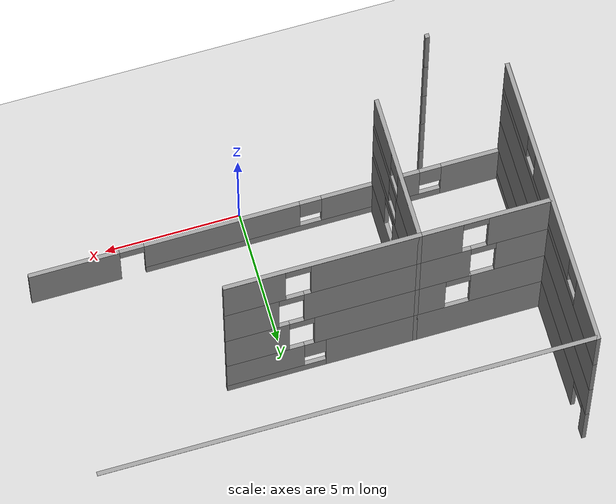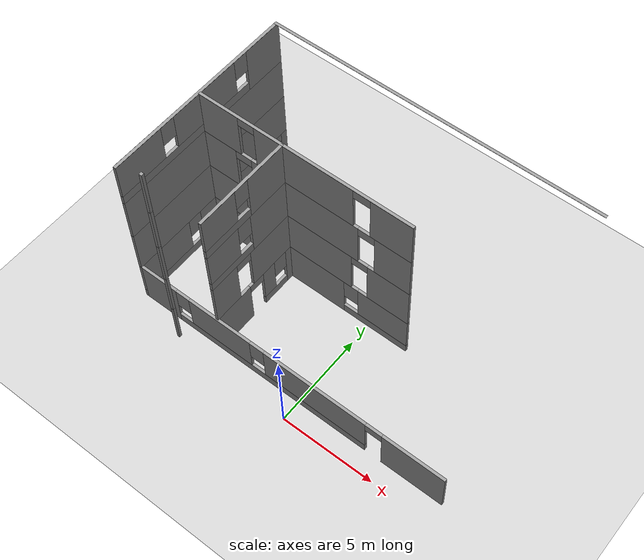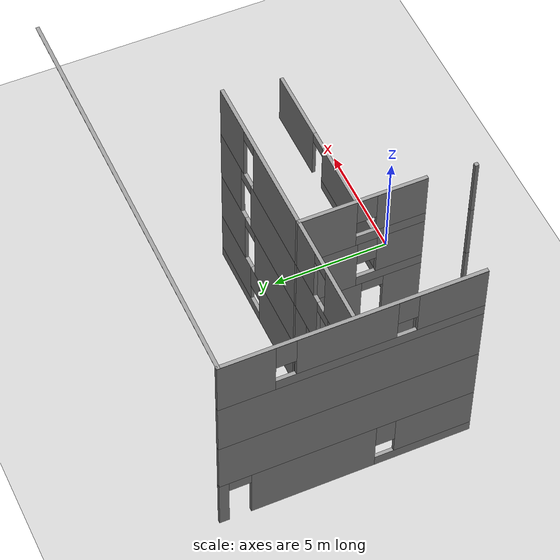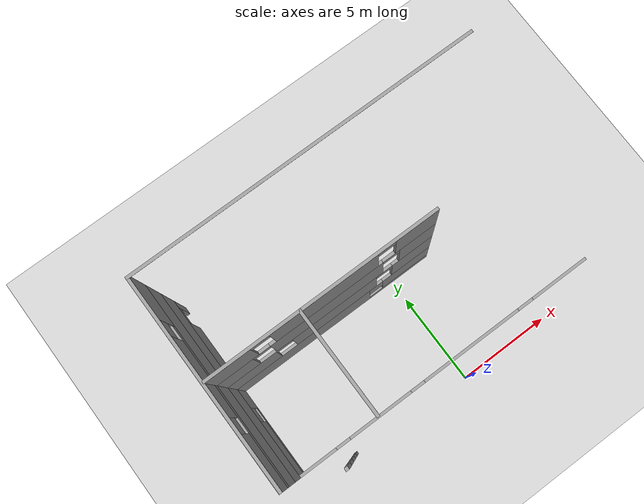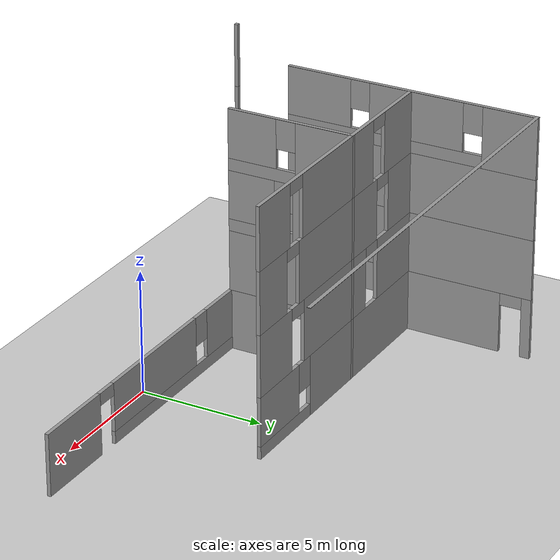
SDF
<sdf version="1.7">
 <world name="default">
  <model name="ground_plane">
   <static>1</static>
   <link name="link">
    <collision name="collision">
     <geometry><plane><normal>0 0 1</normal><size>100 100</size></plane></geometry>
     <surface>
      <contact><collide_bitmask>65535</collide_bitmask></contact>
      <friction><ode><mu>100</mu><mu2>50</mu2></ode></friction>
     </surface>
    </collision>
    <visual name="visual">
     <cast_shadows>0</cast_shadows>
     <geometry><plane><normal>0 0 1</normal><size>100 100</size></plane></geometry>
     <material>
      <script><uri>file://media/materials/scripts/gazebo.material</uri><name>Gazebo/Grey</name></script>
     </material>
    </visual>
   </link>
  </model>
  <model name="saglam_yeni_bina1">
   <pose>-0.684997 5.87917 0 0 -0 0</pose>
   <link name="Floor_0">
    <pose>-5.97811 -5.5661 0 0 -0 0</pose>
    <visual name="Floor_0_Visual_0">
     <pose>0 0 0.05 0 -0 0</pose>
     <geometry><box><size>0 0 0.1</size></box></geometry>
     <material>
      <script><uri>file://media/materials/scripts/gazebo.material</uri><name>Gazebo/CeilingTiled</name></script>
      <ambient>0.435294 0.796078 0.67451 1</ambient>
     </material>
     <meta><layer>0</layer></meta>
    </visual>
    <collision name="Floor_0_Collision_0">
     <geometry><box><size>0 0 0.1</size></box></geometry>
     <pose>0 0 0.05 0 -0 0</pose>
    </collision>
   </link>
   <link name="Wall_3">
    <collision name="Wall_3_Collision">
     <geometry><box><size>0.15 0.15 2.5</size></box></geometry>
     <pose>0 0 1.25 0 -0 0</pose>
    </collision>
    <visual name="Wall_3_Visual">
     <pose>0 0 1.25 0 -0 0</pose>
     <geometry><box><size>0.15 0.15 2.5</size></box></geometry>
     <material>
      <script><uri>file://media/materials/scripts/gazebo.material</uri><name>Gazebo/Grey</name></script>
      <ambient>1 1 1 1</ambient>
     </material>
     <meta><layer>0</layer></meta>
    </visual>
    <pose>-5.97811 -5.5661 0 0 -0 0</pose>
   </link>
   <link name="Wall_32">
    <pose>-0.022952 -4.7839 0 0 -0 0</pose>
    <visual name="Wall_32_Visual_0">
     <pose>-7.60802 0 1.25 0 -0 0</pose>
     <geometry><box><size>2.28397 0.15 2.5</size></box></geometry>
     <material>
      <script><uri>file://media/materials/scripts/gazebo.material</uri><name>Gazebo/Grey</name></script>
      <ambient>1 1 1 1</ambient>
     </material>
     <meta><layer>0</layer></meta>
    </visual>
    <collision name="Wall_32_Collision_0">
     <geometry><box><size>2.28397 0.15 2.5</size></box></geometry>
     <pose>-7.60802 0 1.25 0 -0 0</pose>
    </collision>
    <visual name="Wall_32_Visual_1">
     <pose>7.08181 0 1.25 0 -0 0</pose>
     <geometry><box><size>3.33638 0.15 2.5</size></box></geometry>
     <material>
      <script><uri>file://media/materials/scripts/gazebo.material</uri><name>Gazebo/Grey</name></script>
      <ambient>1 1 1 1</ambient>
     </material>
     <meta><layer>0</layer></meta>
    </visual>
    <collision name="Wall_32_Collision_1">
     <geometry><box><size>3.33638 0.15 2.5</size></box></geometry>
     <pose>7.08181 0 1.25 0 -0 0</pose>
    </collision>
    <visual name="Wall_32_Visual_2">
     <pose>-0.976209 0 0.25 0 -0 0</pose>
     <geometry><box><size>10.9796 0.15 0.5</size></box></geometry>
     <material>
      <script><uri>file://media/materials/scripts/gazebo.material</uri><name>Gazebo/Grey</name></script>
      <ambient>1 1 1 1</ambient>
     </material>
     <meta><layer>0</layer></meta>
    </visual>
    <collision name="Wall_32_Collision_2">
     <geometry><box><size>10.9796 0.15 0.5</size></box></geometry>
     <pose>-0.976209 0 0.25 0 -0 0</pose>
    </collision>
    <visual name="Wall_32_Visual_3">
     <pose>-3.84423 0 1.5 0 -0 0</pose>
     <geometry><box><size>3.6436 0.15 2</size></box></geometry>
     <material>
      <script><uri>file://media/materials/scripts/gazebo.material</uri><name>Gazebo/Grey</name></script>
      <ambient>1 1 1 1</ambient>
     </material>
     <meta><layer>0</layer></meta>
    </visual>
    <collision name="Wall_32_Collision_3">
     <geometry><box><size>3.6436 0.15 2</size></box></geometry>
     <pose>-3.84423 0 1.5 0 -0 0</pose>
    </collision>
    <visual name="Wall_32_Visual_4">
     <pose>1.64559 0 1.5 0 -0 0</pose>
     <geometry><box><size>5.73605 0.15 2</size></box></geometry>
     <material>
      <script><uri>file://media/materials/scripts/gazebo.material</uri><name>Gazebo/Grey</name></script>
      <ambient>1 1 1 1</ambient>
     </material>
     <meta><layer>0</layer></meta>
    </visual>
    <collision name="Wall_32_Collision_4">
     <geometry><box><size>5.73605 0.15 2</size></box></geometry>
     <pose>1.64559 0 1.5 0 -0 0</pose>
    </collision>
    <visual name="Wall_32_Visual_5">
     <pose>-6.06603 0 1.9 0 -0 0</pose>
     <geometry><box><size>0.8 0.15 1.2</size></box></geometry>
     <material>
      <script><uri>file://media/materials/scripts/gazebo.material</uri><name>Gazebo/Grey</name></script>
      <ambient>1 1 1 1</ambient>
     </material>
     <meta><layer>0</layer></meta>
    </visual>
    <collision name="Wall_32_Collision_5">
     <geometry><box><size>0.8 0.15 1.2</size></box></geometry>
     <pose>-6.06603 0 1.9 0 -0 0</pose>
    </collision>
    <visual name="Wall_32_Visual_6">
     <pose>-1.62243 0 1.9 0 -0 0</pose>
     <geometry><box><size>0.8 0.15 1.2</size></box></geometry>
     <material>
      <script><uri>file://media/materials/scripts/gazebo.material</uri><name>Gazebo/Grey</name></script>
      <ambient>1 1 1 1</ambient>
     </material>
     <meta><layer>0</layer></meta>
    </visual>
    <collision name="Wall_32_Collision_6">
     <geometry><box><size>0.8 0.15 1.2</size></box></geometry>
     <pose>-1.62243 0 1.9 0 -0 0</pose>
    </collision>
    <visual name="Wall_32_Visual_7">
     <pose>4.96362 0 2.25 0 -0 0</pose>
     <geometry><box><size>0.9 0.15 0.5</size></box></geometry>
     <material>
      <script><uri>file://media/materials/scripts/gazebo.material</uri><name>Gazebo/Grey</name></script>
      <ambient>1 1 1 1</ambient>
     </material>
     <meta><layer>0</layer></meta>
    </visual>
    <collision name="Wall_32_Collision_7">
     <geometry><box><size>0.9 0.15 0.5</size></box></geometry>
     <pose>4.96362 0 2.25 0 -0 0</pose>
    </collision>
   </link>
   <link name="Wall_35">
    <pose>-8.69795 0.3911 0 0 -0 -1.5708</pose>
    <visual name="Wall_35_Visual_0">
     <pose>-5.04796 0 1.25 0 -0 0</pose>
     <geometry><box><size>0.404073 0.15 2.5</size></box></geometry>
     <material>
      <script><uri>file://media/materials/scripts/gazebo.material</uri><name>Gazebo/Grey</name></script>
      <ambient>1 1 1 1</ambient>
     </material>
     <meta><layer>0</layer></meta>
    </visual>
    <collision name="Wall_35_Collision_0">
     <geometry><box><size>0.404073 0.15 2.5</size></box></geometry>
     <pose>-5.04796 0 1.25 0 -0 0</pose>
    </collision>
    <visual name="Wall_35_Visual_1">
     <pose>-1.38208 0 1.25 0 -0 0</pose>
     <geometry><box><size>5.1277 0.15 2.5</size></box></geometry>
     <material>
      <script><uri>file://media/materials/scripts/gazebo.material</uri><name>Gazebo/Grey</name></script>
      <ambient>1 1 1 1</ambient>
     </material>
     <meta><layer>0</layer></meta>
    </visual>
    <collision name="Wall_35_Collision_1">
     <geometry><box><size>5.1277 0.15 2.5</size></box></geometry>
     <pose>-1.38208 0 1.25 0 -0 0</pose>
    </collision>
    <visual name="Wall_35_Visual_2">
     <pose>3.21589 0 0.25 0 -0 0</pose>
     <geometry><box><size>4.06823 0.15 0.5</size></box></geometry>
     <material>
      <script><uri>file://media/materials/scripts/gazebo.material</uri><name>Gazebo/Grey</name></script>
      <ambient>1 1 1 1</ambient>
     </material>
     <meta><layer>0</layer></meta>
    </visual>
    <collision name="Wall_35_Collision_2">
     <geometry><box><size>4.06823 0.15 0.5</size></box></geometry>
     <pose>3.21589 0 0.25 0 -0 0</pose>
    </collision>
    <visual name="Wall_35_Visual_3">
     <pose>3.61589 0 1.5 0 -0 0</pose>
     <geometry><box><size>3.26823 0.15 2</size></box></geometry>
     <material>
      <script><uri>file://media/materials/scripts/gazebo.material</uri><name>Gazebo/Grey</name></script>
      <ambient>1 1 1 1</ambient>
     </material>
     <meta><layer>0</layer></meta>
    </visual>
    <collision name="Wall_35_Collision_3">
     <geometry><box><size>3.26823 0.15 2</size></box></geometry>
     <pose>3.61589 0 1.5 0 -0 0</pose>
    </collision>
    <visual name="Wall_35_Visual_4">
     <pose>1.58177 0 1.9 0 -0 0</pose>
     <geometry><box><size>0.8 0.15 1.2</size></box></geometry>
     <material>
      <script><uri>file://media/materials/scripts/gazebo.material</uri><name>Gazebo/Grey</name></script>
      <ambient>1 1 1 1</ambient>
     </material>
     <meta><layer>0</layer></meta>
    </visual>
    <collision name="Wall_35_Collision_4">
     <geometry><box><size>0.8 0.15 1.2</size></box></geometry>
     <pose>1.58177 0 1.9 0 -0 0</pose>
    </collision>
    <visual name="Wall_35_Visual_5">
     <pose>-4.39593 0 2.25 0 -0 0</pose>
     <geometry><box><size>0.9 0.15 0.5</size></box></geometry>
     <material>
      <script><uri>file://media/materials/scripts/gazebo.material</uri><name>Gazebo/Grey</name></script>
      <ambient>1 1 1 1</ambient>
     </material>
     <meta><layer>0</layer></meta>
    </visual>
    <collision name="Wall_35_Collision_5">
     <geometry><box><size>0.9 0.15 0.5</size></box></geometry>
     <pose>-4.39593 0 2.25 0 -0 0</pose>
    </collision>
   </link>
   <link name="Wall_39">
    <collision name="Wall_39_Collision">
     <geometry><box><size>4.75 0.15 2.5</size></box></geometry>
     <pose>0 0 1.25 0 -0 0</pose>
    </collision>
    <visual name="Wall_39_Visual">
     <pose>0 0 1.25 0 -0 0</pose>
     <geometry><box><size>4.75 0.15 2.5</size></box></geometry>
     <material>
      <script><uri>file://media/materials/scripts/gazebo.material</uri><name>Gazebo/Grey</name></script>
      <ambient>1 1 1 1</ambient>
     </material>
     <meta><layer>0</layer></meta>
    </visual>
    <pose>-6.30174 0.369877 0 0 -0 0</pose>
   </link>
   <link name="Wall_40">
    <pose>-4.00174 -2.18012 0 0 -0 -1.5708</pose>
    <visual name="Wall_40_Visual_0">
     <pose>-2.3643 0 1.25 0 -0 0</pose>
     <geometry><box><size>0.5214 0.15 2.5</size></box></geometry>
     <material>
      <script><uri>file://media/materials/scripts/gazebo.material</uri><name>Gazebo/Grey</name></script>
      <ambient>1 1 1 1</ambient>
     </material>
     <meta><layer>0</layer></meta>
    </visual>
    <collision name="Wall_40_Collision_0">
     <geometry><box><size>0.5214 0.15 2.5</size></box></geometry>
     <pose>-2.3643 0 1.25 0 -0 0</pose>
    </collision>
    <visual name="Wall_40_Visual_1">
     <pose>1.50565 0 1.25 0 -0 0</pose>
     <geometry><box><size>2.2387 0.15 2.5</size></box></geometry>
     <material>
      <script><uri>file://media/materials/scripts/gazebo.material</uri><name>Gazebo/Grey</name></script>
      <ambient>1 1 1 1</ambient>
     </material>
     <meta><layer>0</layer></meta>
    </visual>
    <collision name="Wall_40_Collision_1">
     <geometry><box><size>2.2387 0.15 2.5</size></box></geometry>
     <pose>1.50565 0 1.25 0 -0 0</pose>
    </collision>
    <visual name="Wall_40_Visual_2">
     <pose>-1.30865 0 0.25 0 -0 0</pose>
     <geometry><box><size>1.5899 0.15 0.5</size></box></geometry>
     <material>
      <script><uri>file://media/materials/scripts/gazebo.material</uri><name>Gazebo/Grey</name></script>
      <ambient>1 1 1 1</ambient>
     </material>
     <meta><layer>0</layer></meta>
    </visual>
    <collision name="Wall_40_Collision_2">
     <geometry><box><size>1.5899 0.15 0.5</size></box></geometry>
     <pose>-1.30865 0 0.25 0 -0 0</pose>
    </collision>
    <visual name="Wall_40_Visual_3">
     <pose>-0.90865 0 1.5 0 -0 0</pose>
     <geometry><box><size>0.7899 0.15 2</size></box></geometry>
     <material>
      <script><uri>file://media/materials/scripts/gazebo.material</uri><name>Gazebo/Grey</name></script>
      <ambient>1 1 1 1</ambient>
     </material>
     <meta><layer>0</layer></meta>
    </visual>
    <collision name="Wall_40_Collision_3">
     <geometry><box><size>0.7899 0.15 2</size></box></geometry>
     <pose>-0.90865 0 1.5 0 -0 0</pose>
    </collision>
    <visual name="Wall_40_Visual_4">
     <pose>-1.7036 0 1.9 0 -0 0</pose>
     <geometry><box><size>0.8 0.15 1.2</size></box></geometry>
     <material>
      <script><uri>file://media/materials/scripts/gazebo.material</uri><name>Gazebo/Grey</name></script>
      <ambient>1 1 1 1</ambient>
     </material>
     <meta><layer>0</layer></meta>
    </visual>
    <collision name="Wall_40_Collision_4">
     <geometry><box><size>0.8 0.15 1.2</size></box></geometry>
     <pose>-1.7036 0 1.9 0 -0 0</pose>
    </collision>
    <visual name="Wall_40_Visual_5">
     <pose>-0.0637 0 2.25 0 -0 0</pose>
     <geometry><box><size>0.9 0.15 0.5</size></box></geometry>
     <material>
      <script><uri>file://media/materials/scripts/gazebo.material</uri><name>Gazebo/Grey</name></script>
      <ambient>1 1 1 1</ambient>
     </material>
     <meta><layer>0</layer></meta>
    </visual>
    <collision name="Wall_40_Collision_5">
     <geometry><box><size>0.9 0.15 0.5</size></box></geometry>
     <pose>-0.0637 0 2.25 0 -0 0</pose>
    </collision>
   </link>
   <link name="Wall_42">
    <pose>-0.576736 0.369877 0 0 -0 0</pose>
    <visual name="Wall_42_Visual_0">
     <pose>-1.82308 0 1.25 0 -0 0</pose>
     <geometry><box><size>3.35385 0.15 2.5</size></box></geometry>
     <material>
      <script><uri>file://media/materials/scripts/gazebo.material</uri><name>Gazebo/Grey</name></script>
      <ambient>1 1 1 1</ambient>
     </material>
     <meta><layer>0</layer></meta>
    </visual>
    <collision name="Wall_42_Collision_0">
     <geometry><box><size>3.35385 0.15 2.5</size></box></geometry>
     <pose>-1.82308 0 1.25 0 -0 0</pose>
    </collision>
    <visual name="Wall_42_Visual_1">
     <pose>1.67692 0 0.25 0 -0 0</pose>
     <geometry><box><size>3.64615 0.15 0.5</size></box></geometry>
     <material>
      <script><uri>file://media/materials/scripts/gazebo.material</uri><name>Gazebo/Grey</name></script>
      <ambient>1 1 1 1</ambient>
     </material>
     <meta><layer>0</layer></meta>
    </visual>
    <collision name="Wall_42_Collision_1">
     <geometry><box><size>3.64615 0.15 0.5</size></box></geometry>
     <pose>1.67692 0 0.25 0 -0 0</pose>
    </collision>
    <visual name="Wall_42_Visual_2">
     <pose>2.07693 0 1.5 0 -0 0</pose>
     <geometry><box><size>2.84615 0.15 2</size></box></geometry>
     <material>
      <script><uri>file://media/materials/scripts/gazebo.material</uri><name>Gazebo/Grey</name></script>
      <ambient>1 1 1 1</ambient>
     </material>
     <meta><layer>0</layer></meta>
    </visual>
    <collision name="Wall_42_Collision_2">
     <geometry><box><size>2.84615 0.15 2</size></box></geometry>
     <pose>2.07693 0 1.5 0 -0 0</pose>
    </collision>
    <visual name="Wall_42_Visual_3">
     <pose>0.25385 0 1.9 0 -0 0</pose>
     <geometry><box><size>0.8 0.15 1.2</size></box></geometry>
     <material>
      <script><uri>file://media/materials/scripts/gazebo.material</uri><name>Gazebo/Grey</name></script>
      <ambient>1 1 1 1</ambient>
     </material>
     <meta><layer>0</layer></meta>
    </visual>
    <collision name="Wall_42_Collision_3">
     <geometry><box><size>0.8 0.15 1.2</size></box></geometry>
     <pose>0.25385 0 1.9 0 -0 0</pose>
    </collision>
   </link>
   <link name="Wall_48">
    <collision name="Wall_48_Collision">
     <geometry><box><size>0.15 0.15 2.5</size></box></geometry>
     <pose>0 0 1.25 0 -0 0</pose>
    </collision>
    <visual name="Wall_48_Visual">
     <pose>0 0 1.25 0 -0 0</pose>
     <geometry><box><size>0.15 0.15 2.5</size></box></geometry>
     <material>
      <script><uri>file://media/materials/scripts/gazebo.material</uri><name>Gazebo/Grey</name></script>
      <ambient>1 1 1 1</ambient>
     </material>
     <meta><layer>1</layer></meta>
    </visual>
    <pose>-5.97811 -5.5661 2.5 0 -0 0</pose>
   </link>
   <link name="Wall_52">
    <collision name="Wall_52_Collision">
     <geometry><box><size>10.5 0.15 2.5</size></box></geometry>
     <pose>0 0 1.25 0 -0 0</pose>
    </collision>
    <visual name="Wall_52_Visual">
     <pose>0 0 1.25 0 -0 0</pose>
     <geometry><box><size>10.5 0.15 2.5</size></box></geometry>
     <material>
      <script><uri>file://media/materials/scripts/gazebo.material</uri><name>Gazebo/Grey</name></script>
      <ambient>1 1 1 1</ambient>
     </material>
     <meta><layer>1</layer></meta>
    </visual>
    <pose>-8.69795 0.3911 2.5 0 -0 -1.5708</pose>
   </link>
   <link name="Wall_53">
    <pose>-6.30174 0.369877 2.5 0 -0 0</pose>
    <visual name="Wall_53_Visual_0">
     <pose>-1.01228 0 1.25 0 -0 0</pose>
     <geometry><box><size>2.72543 0.15 2.5</size></box></geometry>
     <material>
      <script><uri>file://media/materials/scripts/gazebo.material</uri><name>Gazebo/Grey</name></script>
      <ambient>1 1 1 1</ambient>
     </material>
     <meta><layer>1</layer></meta>
    </visual>
    <collision name="Wall_53_Collision_0">
     <geometry><box><size>2.72543 0.15 2.5</size></box></geometry>
     <pose>-1.01228 0 1.25 0 -0 0</pose>
    </collision>
    <visual name="Wall_53_Visual_1">
     <pose>1.81272 0 1.25 0 -0 0</pose>
     <geometry><box><size>1.12457 0.15 2.5</size></box></geometry>
     <material>
      <script><uri>file://media/materials/scripts/gazebo.material</uri><name>Gazebo/Grey</name></script>
      <ambient>1 1 1 1</ambient>
     </material>
     <meta><layer>1</layer></meta>
    </visual>
    <collision name="Wall_53_Collision_1">
     <geometry><box><size>1.12457 0.15 2.5</size></box></geometry>
     <pose>1.81272 0 1.25 0 -0 0</pose>
    </collision>
    <visual name="Wall_53_Visual_2">
     <pose>0.800433 0 2.25 0 -0 0</pose>
     <geometry><box><size>0.9 0.15 0.5</size></box></geometry>
     <material>
      <script><uri>file://media/materials/scripts/gazebo.material</uri><name>Gazebo/Grey</name></script>
      <ambient>1 1 1 1</ambient>
     </material>
     <meta><layer>1</layer></meta>
    </visual>
    <collision name="Wall_53_Collision_2">
     <geometry><box><size>0.9 0.15 0.5</size></box></geometry>
     <pose>0.800433 0 2.25 0 -0 0</pose>
    </collision>
   </link>
   <link name="Wall_54">
    <pose>-4.00174 -2.18012 2.5 0 -0 -1.5708</pose>
    <visual name="Wall_54_Visual_0">
     <pose>-1.24914 0 1.25 0 -0 0</pose>
     <geometry><box><size>2.75172 0.15 2.5</size></box></geometry>
     <material>
      <script><uri>file://media/materials/scripts/gazebo.material</uri><name>Gazebo/Grey</name></script>
      <ambient>1 1 1 1</ambient>
     </material>
     <meta><layer>1</layer></meta>
    </visual>
    <collision name="Wall_54_Collision_0">
     <geometry><box><size>2.75172 0.15 2.5</size></box></geometry>
     <pose>-1.24914 0 1.25 0 -0 0</pose>
    </collision>
    <visual name="Wall_54_Visual_1">
     <pose>1.82586 0 1.25 0 -0 0</pose>
     <geometry><box><size>1.59828 0.15 2.5</size></box></geometry>
     <material>
      <script><uri>file://media/materials/scripts/gazebo.material</uri><name>Gazebo/Grey</name></script>
      <ambient>1 1 1 1</ambient>
     </material>
     <meta><layer>1</layer></meta>
    </visual>
    <collision name="Wall_54_Collision_1">
     <geometry><box><size>1.59828 0.15 2.5</size></box></geometry>
     <pose>1.82586 0 1.25 0 -0 0</pose>
    </collision>
    <visual name="Wall_54_Visual_2">
     <pose>0.576722 0 2.25 0 -0 0</pose>
     <geometry><box><size>0.9 0.15 0.5</size></box></geometry>
     <material>
      <script><uri>file://media/materials/scripts/gazebo.material</uri><name>Gazebo/Grey</name></script>
      <ambient>1 1 1 1</ambient>
     </material>
     <meta><layer>1</layer></meta>
    </visual>
    <collision name="Wall_54_Collision_2">
     <geometry><box><size>0.9 0.15 0.5</size></box></geometry>
     <pose>0.576722 0 2.25 0 -0 0</pose>
    </collision>
   </link>
   <link name="Wall_55">
    <pose>-0.576736 0.369877 2.5 0 -0 0</pose>
    <visual name="Wall_55_Visual_0">
     <pose>-1.6064 0 1.25 0 -0 0</pose>
     <geometry><box><size>3.7872 0.15 2.5</size></box></geometry>
     <material>
      <script><uri>file://media/materials/scripts/gazebo.material</uri><name>Gazebo/Grey</name></script>
      <ambient>1 1 1 1</ambient>
     </material>
     <meta><layer>1</layer></meta>
    </visual>
    <collision name="Wall_55_Collision_0">
     <geometry><box><size>3.7872 0.15 2.5</size></box></geometry>
     <pose>-1.6064 0 1.25 0 -0 0</pose>
    </collision>
    <visual name="Wall_55_Visual_1">
     <pose>2.3436 0 1.25 0 -0 0</pose>
     <geometry><box><size>2.3128 0.15 2.5</size></box></geometry>
     <material>
      <script><uri>file://media/materials/scripts/gazebo.material</uri><name>Gazebo/Grey</name></script>
      <ambient>1 1 1 1</ambient>
     </material>
     <meta><layer>1</layer></meta>
    </visual>
    <collision name="Wall_55_Collision_1">
     <geometry><box><size>2.3128 0.15 2.5</size></box></geometry>
     <pose>2.3436 0 1.25 0 -0 0</pose>
    </collision>
    <visual name="Wall_55_Visual_2">
     <pose>0.737203 0 2.25 0 -0 0</pose>
     <geometry><box><size>0.9 0.15 0.5</size></box></geometry>
     <material>
      <script><uri>file://media/materials/scripts/gazebo.material</uri><name>Gazebo/Grey</name></script>
      <ambient>1 1 1 1</ambient>
     </material>
     <meta><layer>1</layer></meta>
    </visual>
    <collision name="Wall_55_Collision_2">
     <geometry><box><size>0.9 0.15 0.5</size></box></geometry>
     <pose>0.737203 0 2.25 0 -0 0</pose>
    </collision>
   </link>
   <link name="Wall_58">
    <collision name="Wall_58_Collision">
     <geometry><box><size>0.15 0.15 2.5</size></box></geometry>
     <pose>0 0 1.25 0 -0 0</pose>
    </collision>
    <visual name="Wall_58_Visual">
     <pose>0 0 1.25 0 -0 0</pose>
     <geometry><box><size>0.15 0.15 2.5</size></box></geometry>
     <material>
      <script><uri>file://media/materials/scripts/gazebo.material</uri><name>Gazebo/Grey</name></script>
      <ambient>1 1 1 1</ambient>
     </material>
     <meta><layer>2</layer></meta>
    </visual>
    <pose>-5.97811 -5.5661 5 0 -0 0</pose>
   </link>
   <link name="Wall_62">
    <collision name="Wall_62_Collision">
     <geometry><box><size>10.5 0.15 2.5</size></box></geometry>
     <pose>0 0 1.25 0 -0 0</pose>
    </collision>
    <visual name="Wall_62_Visual">
     <pose>0 0 1.25 0 -0 0</pose>
     <geometry><box><size>10.5 0.15 2.5</size></box></geometry>
     <material>
      <script><uri>file://media/materials/scripts/gazebo.material</uri><name>Gazebo/Grey</name></script>
      <ambient>1 1 1 1</ambient>
     </material>
     <meta><layer>2</layer></meta>
    </visual>
    <pose>-8.69795 0.3911 5 0 -0 -1.5708</pose>
   </link>
   <link name="Wall_63">
    <pose>-6.30174 0.369877 5 0 -0 0</pose>
    <visual name="Wall_63_Visual_0">
     <pose>-1.42996 0 1.25 0 -0 0</pose>
     <geometry><box><size>1.89009 0.15 2.5</size></box></geometry>
     <material>
      <script><uri>file://media/materials/scripts/gazebo.material</uri><name>Gazebo/Grey</name></script>
      <ambient>1 1 1 1</ambient>
     </material>
     <meta><layer>2</layer></meta>
    </visual>
    <collision name="Wall_63_Collision_0">
     <geometry><box><size>1.89009 0.15 2.5</size></box></geometry>
     <pose>-1.42996 0 1.25 0 -0 0</pose>
    </collision>
    <visual name="Wall_63_Visual_1">
     <pose>1.39505 0 1.25 0 -0 0</pose>
     <geometry><box><size>1.95991 0.15 2.5</size></box></geometry>
     <material>
      <script><uri>file://media/materials/scripts/gazebo.material</uri><name>Gazebo/Grey</name></script>
      <ambient>1 1 1 1</ambient>
     </material>
     <meta><layer>2</layer></meta>
    </visual>
    <collision name="Wall_63_Collision_1">
     <geometry><box><size>1.95991 0.15 2.5</size></box></geometry>
     <pose>1.39505 0 1.25 0 -0 0</pose>
    </collision>
    <visual name="Wall_63_Visual_2">
     <pose>-0.03491 0 2.25 0 -0 0</pose>
     <geometry><box><size>0.9 0.15 0.5</size></box></geometry>
     <material>
      <script><uri>file://media/materials/scripts/gazebo.material</uri><name>Gazebo/Grey</name></script>
      <ambient>1 1 1 1</ambient>
     </material>
     <meta><layer>2</layer></meta>
    </visual>
    <collision name="Wall_63_Collision_2">
     <geometry><box><size>0.9 0.15 0.5</size></box></geometry>
     <pose>-0.03491 0 2.25 0 -0 0</pose>
    </collision>
   </link>
   <link name="Wall_64">
    <pose>-4.00174 -2.18012 5 0 -0 -1.5708</pose>
    <visual name="Wall_64_Visual_0">
     <pose>-1.37883 0 1.25 0 -0 0</pose>
     <geometry><box><size>2.49234 0.15 2.5</size></box></geometry>
     <material>
      <script><uri>file://media/materials/scripts/gazebo.material</uri><name>Gazebo/Grey</name></script>
      <ambient>1 1 1 1</ambient>
     </material>
     <meta><layer>2</layer></meta>
    </visual>
    <collision name="Wall_64_Collision_0">
     <geometry><box><size>2.49234 0.15 2.5</size></box></geometry>
     <pose>-1.37883 0 1.25 0 -0 0</pose>
    </collision>
    <visual name="Wall_64_Visual_1">
     <pose>1.24617 0 0.25 0 -0 0</pose>
     <geometry><box><size>2.75766 0.15 0.5</size></box></geometry>
     <material>
      <script><uri>file://media/materials/scripts/gazebo.material</uri><name>Gazebo/Grey</name></script>
      <ambient>1 1 1 1</ambient>
     </material>
     <meta><layer>2</layer></meta>
    </visual>
    <collision name="Wall_64_Collision_1">
     <geometry><box><size>2.75766 0.15 0.5</size></box></geometry>
     <pose>1.24617 0 0.25 0 -0 0</pose>
    </collision>
    <visual name="Wall_64_Visual_2">
     <pose>1.64617 0 1.5 0 -0 0</pose>
     <geometry><box><size>1.95766 0.15 2</size></box></geometry>
     <material>
      <script><uri>file://media/materials/scripts/gazebo.material</uri><name>Gazebo/Grey</name></script>
      <ambient>1 1 1 1</ambient>
     </material>
     <meta><layer>2</layer></meta>
    </visual>
    <collision name="Wall_64_Collision_2">
     <geometry><box><size>1.95766 0.15 2</size></box></geometry>
     <pose>1.64617 0 1.5 0 -0 0</pose>
    </collision>
    <visual name="Wall_64_Visual_3">
     <pose>0.267336 0 1.9 0 -0 0</pose>
     <geometry><box><size>0.8 0.15 1.2</size></box></geometry>
     <material>
      <script><uri>file://media/materials/scripts/gazebo.material</uri><name>Gazebo/Grey</name></script>
      <ambient>1 1 1 1</ambient>
     </material>
     <meta><layer>2</layer></meta>
    </visual>
    <collision name="Wall_64_Collision_3">
     <geometry><box><size>0.8 0.15 1.2</size></box></geometry>
     <pose>0.267336 0 1.9 0 -0 0</pose>
    </collision>
   </link>
   <link name="Wall_65">
    <pose>-0.576736 0.369877 5 0 -0 0</pose>
    <visual name="Wall_65_Visual_0">
     <pose>-1.42077 0 1.25 0 -0 0</pose>
     <geometry><box><size>4.15847 0.15 2.5</size></box></geometry>
     <material>
      <script><uri>file://media/materials/scripts/gazebo.material</uri><name>Gazebo/Grey</name></script>
      <ambient>1 1 1 1</ambient>
     </material>
     <meta><layer>2</layer></meta>
    </visual>
    <collision name="Wall_65_Collision_0">
     <geometry><box><size>4.15847 0.15 2.5</size></box></geometry>
     <pose>-1.42077 0 1.25 0 -0 0</pose>
    </collision>
    <visual name="Wall_65_Visual_1">
     <pose>2.52923 0 1.25 0 -0 0</pose>
     <geometry><box><size>1.94153 0.15 2.5</size></box></geometry>
     <material>
      <script><uri>file://media/materials/scripts/gazebo.material</uri><name>Gazebo/Grey</name></script>
      <ambient>1 1 1 1</ambient>
     </material>
     <meta><layer>2</layer></meta>
    </visual>
    <collision name="Wall_65_Collision_1">
     <geometry><box><size>1.94153 0.15 2.5</size></box></geometry>
     <pose>2.52923 0 1.25 0 -0 0</pose>
    </collision>
    <visual name="Wall_65_Visual_2">
     <pose>1.10847 0 2.25 0 -0 0</pose>
     <geometry><box><size>0.9 0.15 0.5</size></box></geometry>
     <material>
      <script><uri>file://media/materials/scripts/gazebo.material</uri><name>Gazebo/Grey</name></script>
      <ambient>1 1 1 1</ambient>
     </material>
     <meta><layer>2</layer></meta>
    </visual>
    <collision name="Wall_65_Collision_2">
     <geometry><box><size>0.9 0.15 0.5</size></box></geometry>
     <pose>1.10847 0 2.25 0 -0 0</pose>
    </collision>
   </link>
   <link name="Wall_68">
    <collision name="Wall_68_Collision">
     <geometry><box><size>0.15 0.15 2.5</size></box></geometry>
     <pose>0 0 1.25 0 -0 0</pose>
    </collision>
    <visual name="Wall_68_Visual">
     <pose>0 0 1.25 0 -0 0</pose>
     <geometry><box><size>0.15 0.15 2.5</size></box></geometry>
     <material>
      <script><uri>file://media/materials/scripts/gazebo.material</uri><name>Gazebo/Grey</name></script>
      <ambient>1 1 1 1</ambient>
     </material>
     <meta><layer>3</layer></meta>
    </visual>
    <pose>-5.97811 -5.5661 7.5 0 -0 0</pose>
   </link>
   <link name="Wall_72">
    <pose>-8.69795 0.3911 7.5 0 -0 -1.5708</pose>
    <visual name="Wall_72_Visual_0">
     <pose>-4.12832 0 1.25 0 -0 0</pose>
     <geometry><box><size>2.24336 0.15 2.5</size></box></geometry>
     <material>
      <script><uri>file://media/materials/scripts/gazebo.material</uri><name>Gazebo/Grey</name></script>
      <ambient>1 1 1 1</ambient>
     </material>
     <meta><layer>3</layer></meta>
    </visual>
    <collision name="Wall_72_Collision_0">
     <geometry><box><size>2.24336 0.15 2.5</size></box></geometry>
     <pose>-4.12832 0 1.25 0 -0 0</pose>
    </collision>
    <visual name="Wall_72_Visual_1">
     <pose>1.12168 0 0.25 0 -0 0</pose>
     <geometry><box><size>8.25664 0.15 0.5</size></box></geometry>
     <material>
      <script><uri>file://media/materials/scripts/gazebo.material</uri><name>Gazebo/Grey</name></script>
      <ambient>1 1 1 1</ambient>
     </material>
     <meta><layer>3</layer></meta>
    </visual>
    <collision name="Wall_72_Collision_1">
     <geometry><box><size>8.25664 0.15 0.5</size></box></geometry>
     <pose>1.12168 0 0.25 0 -0 0</pose>
    </collision>
    <visual name="Wall_72_Visual_2">
     <pose>-0.239835 0 1.5 0 -0 0</pose>
     <geometry><box><size>3.93361 0.15 2</size></box></geometry>
     <material>
      <script><uri>file://media/materials/scripts/gazebo.material</uri><name>Gazebo/Grey</name></script>
      <ambient>1 1 1 1</ambient>
     </material>
     <meta><layer>3</layer></meta>
    </visual>
    <collision name="Wall_72_Collision_2">
     <geometry><box><size>3.93361 0.15 2</size></box></geometry>
     <pose>-0.239835 0 1.5 0 -0 0</pose>
    </collision>
    <visual name="Wall_72_Visual_3">
     <pose>3.88849 0 1.5 0 -0 0</pose>
     <geometry><box><size>2.72303 0.15 2</size></box></geometry>
     <material>
      <script><uri>file://media/materials/scripts/gazebo.material</uri><name>Gazebo/Grey</name></script>
      <ambient>1 1 1 1</ambient>
     </material>
     <meta><layer>3</layer></meta>
    </visual>
    <collision name="Wall_72_Collision_3">
     <geometry><box><size>2.72303 0.15 2</size></box></geometry>
     <pose>3.88849 0 1.5 0 -0 0</pose>
    </collision>
    <visual name="Wall_72_Visual_4">
     <pose>-2.60664 0 1.9 0 -0 0</pose>
     <geometry><box><size>0.8 0.15 1.2</size></box></geometry>
     <material>
      <script><uri>file://media/materials/scripts/gazebo.material</uri><name>Gazebo/Grey</name></script>
      <ambient>1 1 1 1</ambient>
     </material>
     <meta><layer>3</layer></meta>
    </visual>
    <collision name="Wall_72_Collision_4">
     <geometry><box><size>0.8 0.15 1.2</size></box></geometry>
     <pose>-2.60664 0 1.9 0 -0 0</pose>
    </collision>
    <visual name="Wall_72_Visual_5">
     <pose>2.12697 0 1.9 0 -0 0</pose>
     <geometry><box><size>0.8 0.15 1.2</size></box></geometry>
     <material>
      <script><uri>file://media/materials/scripts/gazebo.material</uri><name>Gazebo/Grey</name></script>
      <ambient>1 1 1 1</ambient>
     </material>
     <meta><layer>3</layer></meta>
    </visual>
    <collision name="Wall_72_Collision_5">
     <geometry><box><size>0.8 0.15 1.2</size></box></geometry>
     <pose>2.12697 0 1.9 0 -0 0</pose>
    </collision>
   </link>
   <link name="Wall_73">
    <pose>-6.30174 0.369877 7.5 0 -0 0</pose>
    <visual name="Wall_73_Visual_0">
     <pose>-1.25979 0 1.25 0 -0 0</pose>
     <geometry><box><size>2.23041 0.15 2.5</size></box></geometry>
     <material>
      <script><uri>file://media/materials/scripts/gazebo.material</uri><name>Gazebo/Grey</name></script>
      <ambient>1 1 1 1</ambient>
     </material>
     <meta><layer>3</layer></meta>
    </visual>
    <collision name="Wall_73_Collision_0">
     <geometry><box><size>2.23041 0.15 2.5</size></box></geometry>
     <pose>-1.25979 0 1.25 0 -0 0</pose>
    </collision>
    <visual name="Wall_73_Visual_1">
     <pose>1.56521 0 1.25 0 -0 0</pose>
     <geometry><box><size>1.61959 0.15 2.5</size></box></geometry>
     <material>
      <script><uri>file://media/materials/scripts/gazebo.material</uri><name>Gazebo/Grey</name></script>
      <ambient>1 1 1 1</ambient>
     </material>
     <meta><layer>3</layer></meta>
    </visual>
    <collision name="Wall_73_Collision_1">
     <geometry><box><size>1.61959 0.15 2.5</size></box></geometry>
     <pose>1.56521 0 1.25 0 -0 0</pose>
    </collision>
    <visual name="Wall_73_Visual_2">
     <pose>0.305415 0 2.25 0 -0 0</pose>
     <geometry><box><size>0.9 0.15 0.5</size></box></geometry>
     <material>
      <script><uri>file://media/materials/scripts/gazebo.material</uri><name>Gazebo/Grey</name></script>
      <ambient>1 1 1 1</ambient>
     </material>
     <meta><layer>3</layer></meta>
    </visual>
    <collision name="Wall_73_Collision_2">
     <geometry><box><size>0.9 0.15 0.5</size></box></geometry>
     <pose>0.305415 0 2.25 0 -0 0</pose>
    </collision>
   </link>
   <link name="Wall_74">
    <pose>-4.00174 -2.18012 7.5 0 -0 -1.5708</pose>
    <visual name="Wall_74_Visual_0">
     <pose>-1.42524 0 1.25 0 -0 0</pose>
     <geometry><box><size>2.39952 0.15 2.5</size></box></geometry>
     <material>
      <script><uri>file://media/materials/scripts/gazebo.material</uri><name>Gazebo/Grey</name></script>
      <ambient>1 1 1 1</ambient>
     </material>
     <meta><layer>3</layer></meta>
    </visual>
    <collision name="Wall_74_Collision_0">
     <geometry><box><size>2.39952 0.15 2.5</size></box></geometry>
     <pose>-1.42524 0 1.25 0 -0 0</pose>
    </collision>
    <visual name="Wall_74_Visual_1">
     <pose>1.19976 0 0.25 0 -0 0</pose>
     <geometry><box><size>2.85048 0.15 0.5</size></box></geometry>
     <material>
      <script><uri>file://media/materials/scripts/gazebo.material</uri><name>Gazebo/Grey</name></script>
      <ambient>1 1 1 1</ambient>
     </material>
     <meta><layer>3</layer></meta>
    </visual>
    <collision name="Wall_74_Collision_1">
     <geometry><box><size>2.85048 0.15 0.5</size></box></geometry>
     <pose>1.19976 0 0.25 0 -0 0</pose>
    </collision>
    <visual name="Wall_74_Visual_2">
     <pose>1.59976 0 1.5 0 -0 0</pose>
     <geometry><box><size>2.05048 0.15 2</size></box></geometry>
     <material>
      <script><uri>file://media/materials/scripts/gazebo.material</uri><name>Gazebo/Grey</name></script>
      <ambient>1 1 1 1</ambient>
     </material>
     <meta><layer>3</layer></meta>
    </visual>
    <collision name="Wall_74_Collision_2">
     <geometry><box><size>2.05048 0.15 2</size></box></geometry>
     <pose>1.59976 0 1.5 0 -0 0</pose>
    </collision>
    <visual name="Wall_74_Visual_3">
     <pose>0.17452 0 1.9 0 -0 0</pose>
     <geometry><box><size>0.8 0.15 1.2</size></box></geometry>
     <material>
      <script><uri>file://media/materials/scripts/gazebo.material</uri><name>Gazebo/Grey</name></script>
      <ambient>1 1 1 1</ambient>
     </material>
     <meta><layer>3</layer></meta>
    </visual>
    <collision name="Wall_74_Collision_3">
     <geometry><box><size>0.8 0.15 1.2</size></box></geometry>
     <pose>0.17452 0 1.9 0 -0 0</pose>
    </collision>
   </link>
   <link name="Wall_75">
    <pose>-0.576736 0.369877 7.5 0 -0 0</pose>
    <visual name="Wall_75_Visual_0">
     <pose>-1.54452 0 1.25 0 -0 0</pose>
     <geometry><box><size>3.91096 0.15 2.5</size></box></geometry>
     <material>
      <script><uri>file://media/materials/scripts/gazebo.material</uri><name>Gazebo/Grey</name></script>
      <ambient>1 1 1 1</ambient>
     </material>
     <meta><layer>3</layer></meta>
    </visual>
    <collision name="Wall_75_Collision_0">
     <geometry><box><size>3.91096 0.15 2.5</size></box></geometry>
     <pose>-1.54452 0 1.25 0 -0 0</pose>
    </collision>
    <visual name="Wall_75_Visual_1">
     <pose>2.40548 0 1.25 0 -0 0</pose>
     <geometry><box><size>2.18904 0.15 2.5</size></box></geometry>
     <material>
      <script><uri>file://media/materials/scripts/gazebo.material</uri><name>Gazebo/Grey</name></script>
      <ambient>1 1 1 1</ambient>
     </material>
     <meta><layer>3</layer></meta>
    </visual>
    <collision name="Wall_75_Collision_1">
     <geometry><box><size>2.18904 0.15 2.5</size></box></geometry>
     <pose>2.40548 0 1.25 0 -0 0</pose>
    </collision>
    <visual name="Wall_75_Visual_2">
     <pose>0.860957 0 2.25 0 -0 0</pose>
     <geometry><box><size>0.9 0.15 0.5</size></box></geometry>
     <material>
      <script><uri>file://media/materials/scripts/gazebo.material</uri><name>Gazebo/Grey</name></script>
      <ambient>1 1 1 1</ambient>
     </material>
     <meta><layer>3</layer></meta>
    </visual>
    <collision name="Wall_75_Collision_2">
     <geometry><box><size>0.9 0.15 0.5</size></box></geometry>
     <pose>0.860957 0 2.25 0 -0 0</pose>
    </collision>
   </link>
   <link name="Wall_88">
    <collision name="Wall_88_Collision">
     <geometry><box><size>0.15 0.15 2.5</size></box></geometry>
     <pose>0 0 1.25 0 -0 0</pose>
    </collision>
    <visual name="Wall_88_Visual">
     <pose>0 0 1.25 0 -0 0</pose>
     <geometry><box><size>0.15 0.15 2.5</size></box></geometry>
     <material>
      <script><uri>file://media/materials/scripts/gazebo.material</uri><name>Gazebo/Grey</name></script>
      <ambient>1 1 1 1</ambient>
     </material>
     <meta><layer>4</layer></meta>
    </visual>
    <pose>-5.97811 -5.5661 10 0 -0 0</pose>
   </link>
   <link name="Wall_91">
    <collision name="Wall_91_Collision">
     <geometry><box><size>17.5 0.15 0.01</size></box></geometry>
     <pose>0 0 0.005 0 -0 0</pose>
    </collision>
    <visual name="Wall_91_Visual">
     <pose>0 0 0.005 0 -0 0</pose>
     <geometry><box><size>17.5 0.15 0.01</size></box></geometry>
     <material>
      <script><uri>file://media/materials/scripts/gazebo.material</uri><name>Gazebo/Grey</name></script>
      <ambient>1 1 1 1</ambient>
     </material>
     <meta><layer>4</layer></meta>
    </visual>
    <pose>-0.023109 5.5659 10 0 -0 3.14159</pose>
   </link>
   <link name="Wall_92">
    <collision name="Wall_92_Collision">
     <geometry><box><size>10.5 0.15 0.01</size></box></geometry>
     <pose>0 0 0.005 0 -0 0</pose>
    </collision>
    <visual name="Wall_92_Visual">
     <pose>0 0 0.005 0 -0 0</pose>
     <geometry><box><size>10.5 0.15 0.01</size></box></geometry>
     <material>
      <script><uri>file://media/materials/scripts/gazebo.material</uri><name>Gazebo/Grey</name></script>
      <ambient>1 1 1 1</ambient>
     </material>
     <meta><layer>4</layer></meta>
    </visual>
    <pose>-8.69161 0.3909 10 0 -0 -1.56954</pose>
   </link>
   <link name="Wall_93">
    <collision name="Wall_93_Collision">
     <geometry><box><size>4.75 0.15 0.01</size></box></geometry>
     <pose>0 0 0.005 0 -0 0</pose>
    </collision>
    <visual name="Wall_93_Visual">
     <pose>0 0 0.005 0 -0 0</pose>
     <geometry><box><size>4.75 0.15 0.01</size></box></geometry>
     <material>
      <script><uri>file://media/materials/scripts/gazebo.material</uri><name>Gazebo/Grey</name></script>
      <ambient>1 1 1 1</ambient>
     </material>
     <meta><layer>4</layer></meta>
    </visual>
    <pose>-6.30211 0.3699 10 0 -0 0</pose>
   </link>
   <link name="Wall_94">
    <collision name="Wall_94_Collision">
     <geometry><box><size>5.25 0.15 0.01</size></box></geometry>
     <pose>0 0 0.005 0 -0 0</pose>
    </collision>
    <visual name="Wall_94_Visual">
     <pose>0 0 0.005 0 -0 0</pose>
     <geometry><box><size>5.25 0.15 0.01</size></box></geometry>
     <material>
      <script><uri>file://media/materials/scripts/gazebo.material</uri><name>Gazebo/Grey</name></script>
      <ambient>1 1 1 1</ambient>
     </material>
     <meta><layer>4</layer></meta>
    </visual>
    <pose>-4.00211 -2.1801 10 0 -0 -1.5708</pose>
   </link>
   <link name="Wall_95">
    <collision name="Wall_95_Collision">
     <geometry><box><size>7 0.15 0.01</size></box></geometry>
     <pose>0 0 0.005 0 -0 0</pose>
    </collision>
    <visual name="Wall_95_Visual">
     <pose>0 0 0.005 0 -0 0</pose>
     <geometry><box><size>7 0.15 0.01</size></box></geometry>
     <material>
      <script><uri>file://media/materials/scripts/gazebo.material</uri><name>Gazebo/Grey</name></script>
      <ambient>1 1 1 1</ambient>
     </material>
     <meta><layer>4</layer></meta>
    </visual>
    <pose>-0.57711 0.3699 10 0 -0 0</pose>
   </link>
   <static>1</static>
  </model>
 </world>
</sdf>
